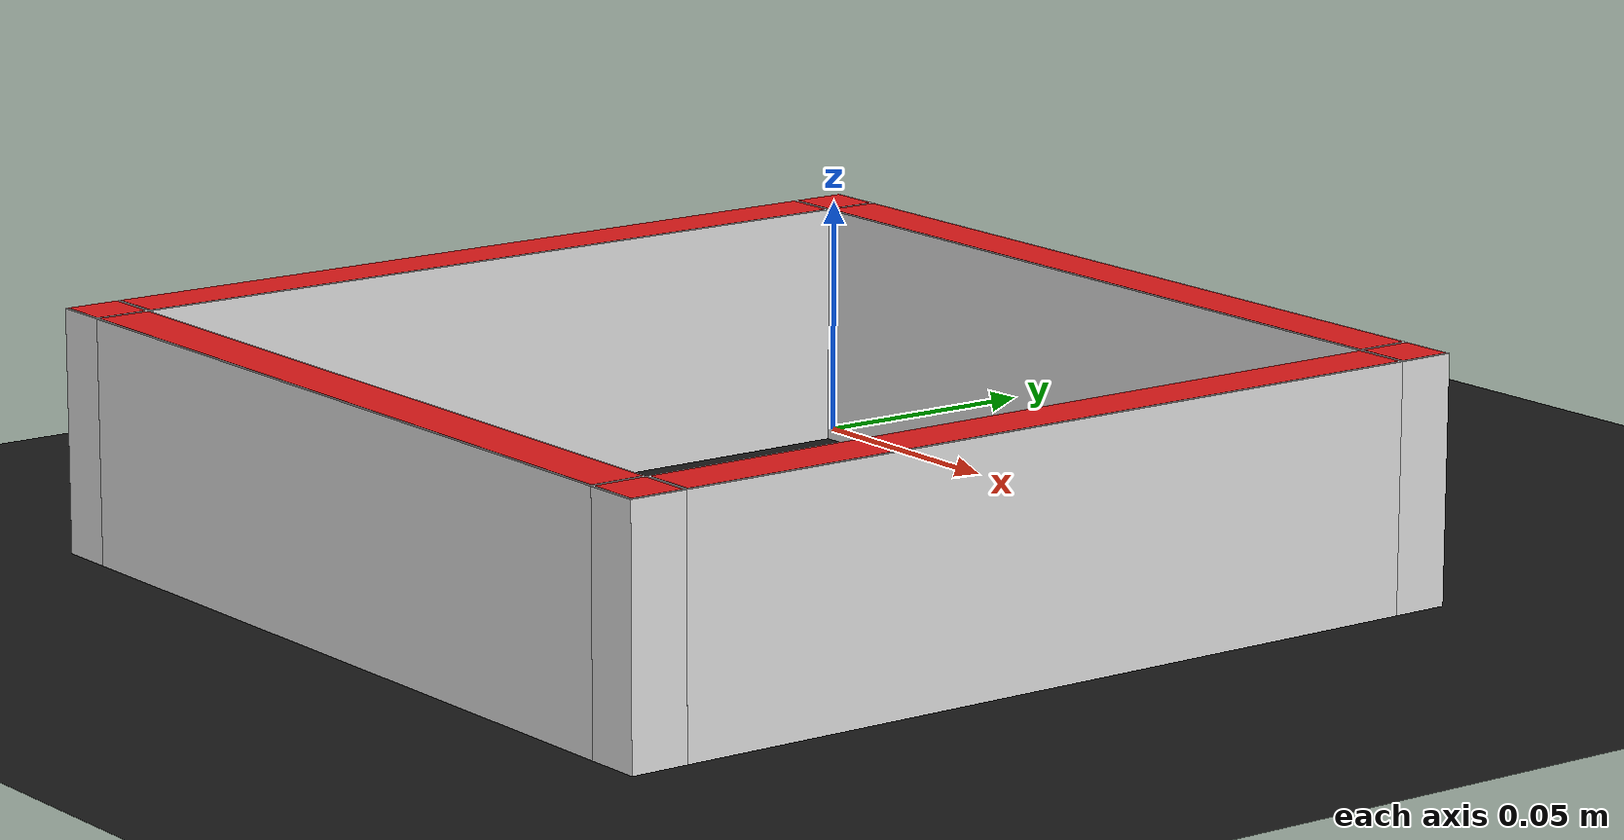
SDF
<?xml version="1.0" ?>
<sdf version="1.8">
    <world name="demo">
        <plugin
            filename="gz-sim-physics-system"
            name="gz::sim::systems::Physics">
        </plugin>
        <plugin
            filename="gz-sim-sensors-system"
            name="gz::sim::systems::Sensors">
            <render_engine>ogre2</render_engine>
        </plugin>
        <plugin
            filename="gz-sim-imu-system"
            name="gz::sim::systems::Imu">
        </plugin>
        <plugin
            filename="gz-sim-scene-broadcaster-system"
            name="gz::sim::systems::SceneBroadcaster">
        </plugin>
        <plugin
            filename="gz-sim-user-commands-system"
            name="gz::sim::systems::UserCommands">
        </plugin>

        <light name="sun" type="directional">
            <cast_shadows>true</cast_shadows>
            <pose>0 0 10 0 0 0</pose>
            <diffuse>0.8 0.8 0.8 1</diffuse>
            <specular>0.2 0.2 0.2 1</specular>
            <attenuation>
                <range>1000</range>
                <constant>0.9</constant>
                <linear>0.01</linear>
                <quadratic>0.001</quadratic>
            </attenuation>
            <direction>-0.5 0.1 -0.9</direction>
        </light>

        <model name="ground_plane">
            <static>true</static>
            <link name="link">
                <collision name="collision">
                    <geometry>
                        <plane>
                            <normal>0 0 1</normal>
                            <size>10 10</size>
                        </plane>
                    </geometry>
                </collision>
                <visual name="visual">
                    <geometry>
                        <plane>
                            <normal>0 0 1</normal>
                            <size>10 10</size>
                        </plane>
                    </geometry>
                    <material>
                        <ambient>0.1 0.1 0.1 1</ambient>
                        <diffuse>0.1 0.1 0.1 1</diffuse>
                        <specular>0.1 0.1 0.1 1</specular>
                    </material>
                </visual>
            </link>
        </model>

        <include>
            <name>wall_east</name>
            <pose>0.09 -0.18 0 0 0 0</pose>
            <uri>package://aether_description/models/maze_wall</uri>
        </include>

        <include>
            <name>wall_north</name>
            <pose>0.18 -0.09 0 0 0 1.5708</pose>
            <uri>package://aether_description/models/maze_wall</uri>
        </include>

        <include>
            <name>wall_west</name>
            <pose>0.09 0 0 0 0 0</pose>
            <uri>package://aether_description/models/maze_wall</uri>
        </include>

        <include>
            <name>wall_south</name>
            <pose>0 -0.09 0 0 0 1.5708</pose>
            <uri>package://aether_description/models/maze_wall</uri>
        </include>

        <include>
            <name>post_north_west</name>
            <pose>0.18 -0.18 0 0 0 0</pose>
            <uri>package://aether_description/models/maze_post</uri>
        </include>

        <include>
            <name>post_north_east</name>
            <pose>0.18 0 0 0 0 0</pose>
            <uri>package://aether_description/models/maze_post</uri>
        </include>

        <include>
            <name>post_south_west</name>
            <pose>0 -0.18 0 0 0 0</pose>
            <uri>package://aether_description/models/maze_post</uri>
        </include>

        <include>
            <name>post_south_east</name>
            <pose>0 0 0 0 0 0</pose>
            <uri>package://aether_description/models/maze_post</uri>
        </include>
    </world>
</sdf>

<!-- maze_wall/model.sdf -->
<sdf version="1.8">
    <model name="maze_wall">
        <static>true</static>
        <link name="link">
            <pose>0 0 0.025 0 0 0</pose>
            <collision name="collision">
                <geometry>
                    <box>
                        <size>0.168 0.012 0.05</size>
                    </box>
                </geometry>
            </collision>
            <visual name="visual">
                <geometry>
                    <box>
                        <size>0.168 0.012 0.05</size>
                    </box>
                </geometry>
                <material>
                    <ambient>0.9 0.9 0.9 1</ambient>
                    <diffuse>0.9 0.9 0.9 1</diffuse>
                </material>
            </visual>
        </link>
        <link name="top">
            <pose>0 0 0.05005 0 0 0</pose>
            <visual name="visual">
                <geometry>
                    <box>
                        <size>0.167 0.011 0.0001</size>
                    </box>
                </geometry>
                <material>
                    <ambient>0.9 0.1 0.1 1</ambient>
                    <diffuse>0.9 0.1 0.1 1</diffuse>
                </material>
            </visual>
        </link>
    </model>
</sdf>

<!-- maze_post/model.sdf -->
<sdf version="1.8">
    <model name="maze_post">
        <static>true</static>
        <link name="link">
            <pose>0 0 0.025 0 0 0</pose>
            <collision name="collision">
                <geometry>
                    <box>
                        <size>0.012 0.012 0.05</size>
                    </box>
                </geometry>
            </collision>
            <visual name="visual">
                <geometry>
                    <box>
                        <size>0.012 0.012 0.05</size>
                    </box>
                </geometry>
                <material>
                    <ambient>0.9 0.9 0.9 1</ambient>
                    <diffuse>0.9 0.9 0.9 1</diffuse>
                </material>
            </visual>
        </link>
        <link name="top">
            <pose>0 0 0.05005 0 0 0</pose>
            <visual name="visual">
                <geometry>
                    <box>
                        <size>0.011 0.011 0.0001</size>
                    </box>
                </geometry>
                <material>
                    <ambient>0.9 0.1 0.1 1</ambient>
                    <diffuse>0.9 0.1 0.1 1</diffuse>
                </material>
            </visual>
        </link>
    </model>
</sdf>
